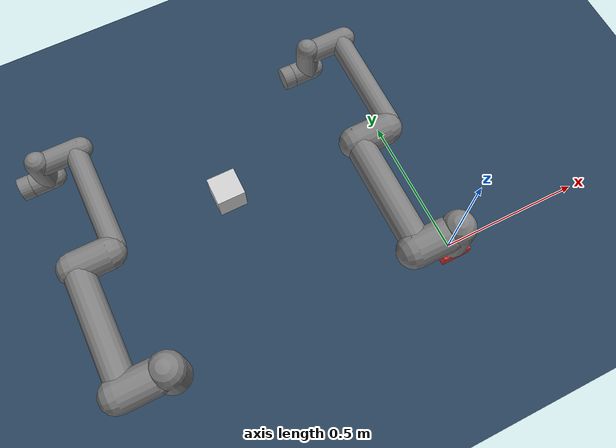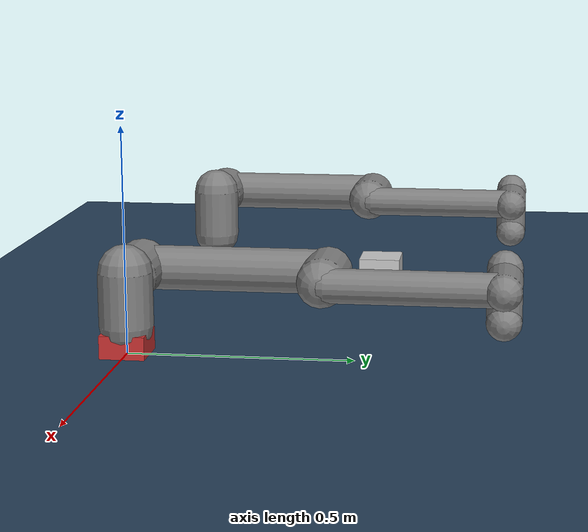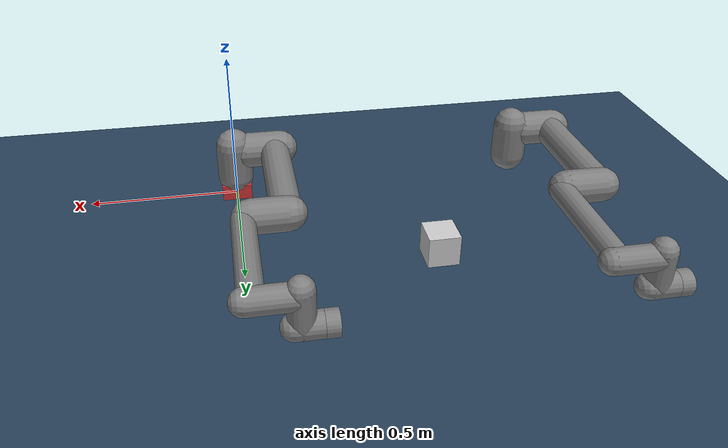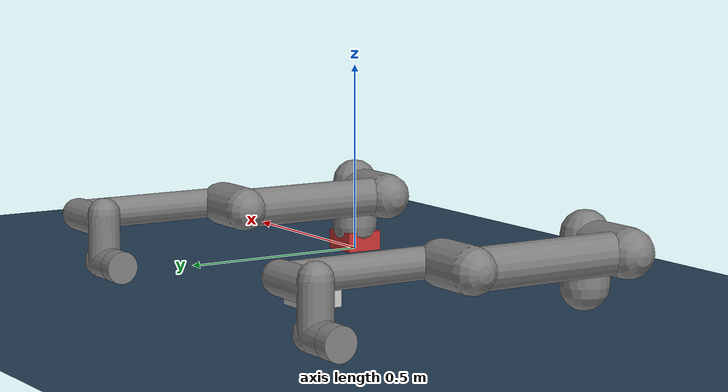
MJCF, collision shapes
<mujoco model="ur5e scene">
  <compiler angle="radian" meshdir="assets" autolimits="true"/>

  <option integrator="implicitfast"/>

   <default>
    <default class="ur5e">
      <material specular="0.5" shininess="0.25"/>
      <joint axis="0 1 0" range="-6.28319 6.28319" armature="0.1"/>
      <general gaintype="fixed" biastype="affine" ctrlrange="-6.2831 6.2831" gainprm="2000" biasprm="0 -2000 -400"
        forcerange="-150 150"/>
      <default class="size3">
        <default class="size3_limited">
          <joint range="-3.1415 3.1415"/>
          <general ctrlrange="-3.1415 3.1415"/>
        </default>
      </default>
      <default class="size1">
        <general gainprm="500" biasprm="0 -500 -100" forcerange="-28 28"/>
      </default>
      <default class="visual">
        <geom type="mesh" contype="0" conaffinity="0" group="2"/>
      </default>
      <default class="collision">
        <geom type="capsule" group="3"/>
        <default class="eef_collision">
          <geom type="cylinder"/>
        </default>
      </default>
      <site size="0.001" rgba="0.5 0.5 0.5 0.3" group="4"/>
    </default>
  </default>
  <statistic center="0.3 0 0.4" extent="0.8"/>

   <asset>
    <material class="ur5e" name="black" rgba="0.033 0.033 0.033 1"/>
    <material class="ur5e" name="jointgray" rgba="0.278 0.278 0.278 1"/>
    <material class="ur5e" name="linkgray" rgba="0.82 0.82 0.82 1"/>
    <material class="ur5e" name="urblue" rgba="0.49 0.678 0.8 1"/>

    <mesh file="base_0.obj"/>
    <mesh file="base_1.obj"/>
    <mesh file="shoulder_0.obj"/>
    <mesh file="shoulder_1.obj"/>
    <mesh file="shoulder_2.obj"/>
    <mesh file="upperarm_0.obj"/>
    <mesh file="upperarm_1.obj"/>
    <mesh file="upperarm_2.obj"/>
    <mesh file="upperarm_3.obj"/>
    <mesh file="forearm_0.obj"/>
    <mesh file="forearm_1.obj"/>
    <mesh file="forearm_2.obj"/>
    <mesh file="forearm_3.obj"/>
    <mesh file="wrist1_0.obj"/>
    <mesh file="wrist1_1.obj"/>
    <mesh file="wrist1_2.obj"/>
    <mesh file="wrist2_0.obj"/>
    <mesh file="wrist2_1.obj"/>
    <mesh file="wrist2_2.obj"/>
    <mesh file="wrist3.obj"/>
  </asset>

  <visual>
    <headlight diffuse="0.6 0.6 0.6" ambient="0.1 0.1 0.1" specular="0 0 0"/>
    <rgba haze="0.15 0.25 0.35 1"/>
    <global azimuth="120" elevation="-20"/>
  </visual>

  <asset>
    <texture type="skybox" builtin="gradient" rgb1="0.3 0.5 0.7" rgb2="0 0 0" width="512" height="3072"/>
    <texture type="2d" name="groundplane" builtin="checker" mark="edge" rgb1="0.2 0.3 0.4" rgb2="0.1 0.2 0.3"
      markrgb="0.8 0.8 0.8" width="300" height="300"/>
    <material name="groundplane" texture="groundplane" texuniform="true" texrepeat="5 5" reflectance="0.2"/>
  </asset>

  <worldbody>
    <light pos="0 0 1.5" dir="0 0 -1" directional="true"/>
    <geom name="floor" size="0 0 0.05" type="plane" material="groundplane"/>

    <body name="pedistal" pos="-0.6 0.5 0.05">
      <geom type="box" size="0.05 0.05 0.05" rgba="0.8 0.8 0.8 1" density="100" friction= "2 0.005 0.0001"/>
    </body>

    <body name="box_body" pos="0 0 0">
      <joint name="box_joint" type="free"/>
      <geom type="box" size="0.05 0.05 0.05" rgba="0.8 0.2 0.2 1"/>
    </body>
    <body name="robot_arm_a" pos="-1 0 0">
      <include file="ur5ea.xml"/>
    </body>
    <body name="robot_arm_b" pos="0 0 0">
      <include file="ur5eb.xml"/>
    </body>
  </worldbody>

  <actuator>
    <include file="ur5a_act.xml"/>
    <include file="ur5b_act.xml"/>
  </actuator>

  <sensor>
  <distance body1="A_wrist_3_link" body2="box_body"/>
  <distance body1="B_wrist_3_link" body2="box_body"/>
  </sensor>

 <equality>
    <!-- Weld constraint to "attach" body to site -->
    <weld name="A_attach" body1="A_wrist_3_link" body2="box_body" active="false"/>
    <weld name="B_attach" body1="B_wrist_3_link" body2="box_body" active="false"/>
  </equality>

</mujoco>

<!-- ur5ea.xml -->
<mujoco model="ur5a">
    <body name="A_base" quat="1 0 0 1" childclass="ur5e">
      <inertial mass="4.0" pos="0 0 0" diaginertia="0.00443333156 0.00443333156 0.0072"/>
      <geom mesh="base_0" material="black" class="visual"/>
      <geom mesh="base_1" material="jointgray" class="visual"/>
      <body name="A_shoulder_link" pos="0 0 0.163">
        <inertial mass="3.7" pos="0 0 0" diaginertia="0.0102675 0.0102675 0.00666"/>
        <joint name="A_shoulder_pan_joint" class="size3" axis="0 0 1"/>
        <geom mesh="shoulder_0" material="urblue" class="visual"/>
        <geom mesh="shoulder_1" material="black" class="visual"/>
        <geom mesh="shoulder_2" material="jointgray" class="visual"/>
        <geom class="collision" size="0.06 0.06" pos="0 0 -0.04"/>
        <body name="A_upper_arm_link" pos="0 0.138 0" quat="1 0 1 0">
          <inertial mass="8.393" pos="0 0 0.2125" diaginertia="0.133886 0.133886 0.0151074"/>
          <joint name="A_shoulder_lift_joint" class="size3"/>
          <geom mesh="upperarm_0" material="linkgray" class="visual"/>
          <geom mesh="upperarm_1" material="black" class="visual"/>
          <geom mesh="upperarm_2" material="jointgray" class="visual"/>
          <geom mesh="upperarm_3" material="urblue" class="visual"/>
          <geom class="collision" pos="0 -0.04 0" quat="1 1 0 0" size="0.06 0.06"/>
          <geom class="collision" size="0.05 0.2" pos="0 0 0.2"/>
          <body name="A_forearm_link" pos="0 -0.131 0.425">
            <inertial mass="2.275" pos="0 0 0.196" diaginertia="0.0311796 0.0311796 0.004095"/>
            <joint name="A_elbow_joint" class="size3_limited"/>
            <geom mesh="forearm_0" material="urblue" class="visual"/>
            <geom mesh="forearm_1" material="linkgray" class="visual"/>
            <geom mesh="forearm_2" material="black" class="visual"/>
            <geom mesh="forearm_3" material="jointgray" class="visual"/>
            <geom class="collision" pos="0 0.08 0" quat="1 1 0 0" size="0.055 0.06"/>
            <geom class="collision" size="0.038 0.19" pos="0 0 0.2"/>
            <body name="A_wrist_1_link" pos="0 0 0.392" quat="1 0 1 0">
              <inertial mass="1.219" pos="0 0.127 0" diaginertia="0.0025599 0.0025599 0.0021942"/>
              <joint name="A_wrist_1_joint" class="size1"/>
              <geom mesh="wrist1_0" material="black" class="visual"/>
              <geom mesh="wrist1_1" material="urblue" class="visual"/>
              <geom mesh="wrist1_2" material="jointgray" class="visual"/>
              <geom class="collision" pos="0 0.05 0" quat="1 1 0 0" size="0.04 0.07"/>
              <body name="A_wrist_2_link" pos="0 0.127 0">
                <inertial mass="1.219" pos="0 0 0.1" diaginertia="0.0025599 0.0025599 0.0021942"/>
                <joint name="A_wrist_2_joint" axis="0 0 1" class="size1"/>
                <geom mesh="wrist2_0" material="black" class="visual"/>
                <geom mesh="wrist2_1" material="urblue" class="visual"/>
                <geom mesh="wrist2_2" material="jointgray" class="visual"/>
                <geom class="collision" size="0.04 0.06" pos="0 0 0.04"/>
                <geom class="collision" pos="0 0.02 0.1" quat="1 1 0 0" size="0.04 0.04"/>
                <body name="A_wrist_3_link" pos="0 0 0.1">
                  <inertial mass="0.1889" pos="0 0.0771683 0" quat="1 0 0 1"
                    diaginertia="0.000132134 9.90863e-05 9.90863e-05"/>
                  <joint name="A_wrist_3_joint" class="size1"/>
                  <geom material="linkgray" mesh="wrist3" class="visual"/>
                  <geom class="eef_collision" pos="0 0.08 0" quat="1 1 0 0" size="0.04 0.02"/>
                  <site name="A_attachment_site" pos="0 0.15 0" quat="-1 1 0 0"/>
                </body>
              </body>
            </body>
          </body>
        </body>
      </body>
    </body>

</mujoco>

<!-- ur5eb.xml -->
<mujoco model="ur5b">
    <body name="B_base" quat="1 0 0 1" childclass="ur5e">
      <inertial mass="4.0" pos="0 0 0" diaginertia="0.00443333156 0.00443333156 0.0072"/>
      <geom mesh="base_0" material="black" class="visual"/>
      <geom mesh="base_1" material="jointgray" class="visual"/>
      <body name="B_shoulder_link" pos="0 0 0.163">
        <inertial mass="3.7" pos="0 0 0" diaginertia="0.0102675 0.0102675 0.00666"/>
        <joint name="B_shoulder_pan_joint" class="size3" axis="0 0 1"/>
        <geom mesh="shoulder_0" material="urblue" class="visual"/>
        <geom mesh="shoulder_1" material="black" class="visual"/>
        <geom mesh="shoulder_2" material="jointgray" class="visual"/>
        <geom class="collision" size="0.06 0.06" pos="0 0 -0.04"/>
        <body name="B_upper_arm_link" pos="0 0.138 0" quat="1 0 1 0">
          <inertial mass="8.393" pos="0 0 0.2125" diaginertia="0.133886 0.133886 0.0151074"/>
          <joint name="B_shoulder_lift_joint" class="size3"/>
          <geom mesh="upperarm_0" material="linkgray" class="visual"/>
          <geom mesh="upperarm_1" material="black" class="visual"/>
          <geom mesh="upperarm_2" material="jointgray" class="visual"/>
          <geom mesh="upperarm_3" material="urblue" class="visual"/>
          <geom class="collision" pos="0 -0.04 0" quat="1 1 0 0" size="0.06 0.06"/>
          <geom class="collision" size="0.05 0.2" pos="0 0 0.2"/>
          <body name="B_forearm_link" pos="0 -0.131 0.425">
            <inertial mass="2.275" pos="0 0 0.196" diaginertia="0.0311796 0.0311796 0.004095"/>
            <joint name="B_elbow_joint" class="size3_limited"/>
            <geom mesh="forearm_0" material="urblue" class="visual"/>
            <geom mesh="forearm_1" material="linkgray" class="visual"/>
            <geom mesh="forearm_2" material="black" class="visual"/>
            <geom mesh="forearm_3" material="jointgray" class="visual"/>
            <geom class="collision" pos="0 0.08 0" quat="1 1 0 0" size="0.055 0.06"/>
            <geom class="collision" size="0.038 0.19" pos="0 0 0.2"/>
            <body name="B_wrist_1_link" pos="0 0 0.392" quat="1 0 1 0">
              <inertial mass="1.219" pos="0 0.127 0" diaginertia="0.0025599 0.0025599 0.0021942"/>
              <joint name="B_wrist_1_joint" class="size1"/>
              <geom mesh="wrist1_0" material="black" class="visual"/>
              <geom mesh="wrist1_1" material="urblue" class="visual"/>
              <geom mesh="wrist1_2" material="jointgray" class="visual"/>
              <geom class="collision" pos="0 0.05 0" quat="1 1 0 0" size="0.04 0.07"/>
              <body name="B_wrist_2_link" pos="0 0.127 0">
                <inertial mass="1.219" pos="0 0 0.1" diaginertia="0.0025599 0.0025599 0.0021942"/>
                <joint name="B_wrist_2_joint" axis="0 0 1" class="size1"/>
                <geom mesh="wrist2_0" material="black" class="visual"/>
                <geom mesh="wrist2_1" material="urblue" class="visual"/>
                <geom mesh="wrist2_2" material="jointgray" class="visual"/>
                <geom class="collision" size="0.04 0.06" pos="0 0 0.04"/>
                <geom class="collision" pos="0 0.02 0.1" quat="1 1 0 0" size="0.04 0.04"/>
                <body name="B_wrist_3_link" pos="0 0 0.1">
                  <inertial mass="0.1889" pos="0 0.0771683 0" quat="1 0 0 1"
                    diaginertia="0.000132134 9.90863e-05 9.90863e-05"/>
                  <joint name="B_wrist_3_joint" class="size1"/>
                  <geom material="linkgray" mesh="wrist3" class="visual"/>
                  <geom class="eef_collision" pos="0 0.08 0" quat="1 1 0 0" size="0.04 0.02"/>
                  <site name="B_attachment_site" pos="0 0.15 0" quat="-1 1 0 0"/>
                </body>
              </body>
            </body>
          </body>
        </body>
      </body>
    </body>

</mujoco>

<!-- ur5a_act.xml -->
<mujoco model="acta">
<general class="size3" name="A_shoulder_pan" joint="A_shoulder_pan_joint"/>
<general class="size3" name="A_shoulder_lift" joint="A_shoulder_lift_joint"/>
<general class="size3_limited" name="A_elbow" joint="A_elbow_joint"/>
<general class="size1" name="A_wrist_1" joint="A_wrist_1_joint"/>
<general class="size1" name="A_wrist_2" joint="A_wrist_2_joint"/>
<general class="size1" name="A_wrist_3" joint="A_wrist_3_joint"/>
</mujoco>

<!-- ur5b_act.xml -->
<mujoco model="actb">
<general class="size3" name="B_shoulder_pan" joint="B_shoulder_pan_joint"/>
<general class="size3" name="B_shoulder_lift" joint="B_shoulder_lift_joint"/>
<general class="size3_limited" name="B_elbow" joint="B_elbow_joint"/>
<general class="size1" name="B_wrist_1" joint="B_wrist_1_joint"/>
<general class="size1" name="B_wrist_2" joint="B_wrist_2_joint"/>
<general class="size1" name="B_wrist_3" joint="B_wrist_3_joint"/>
</mujoco>
